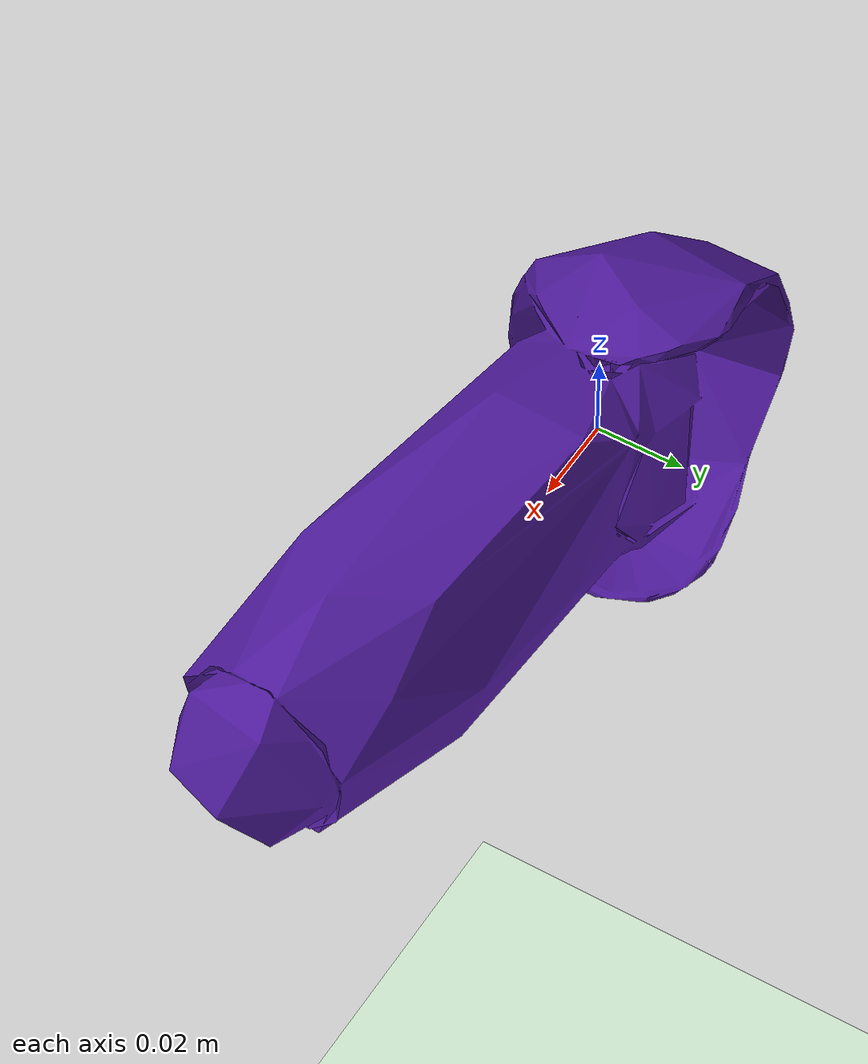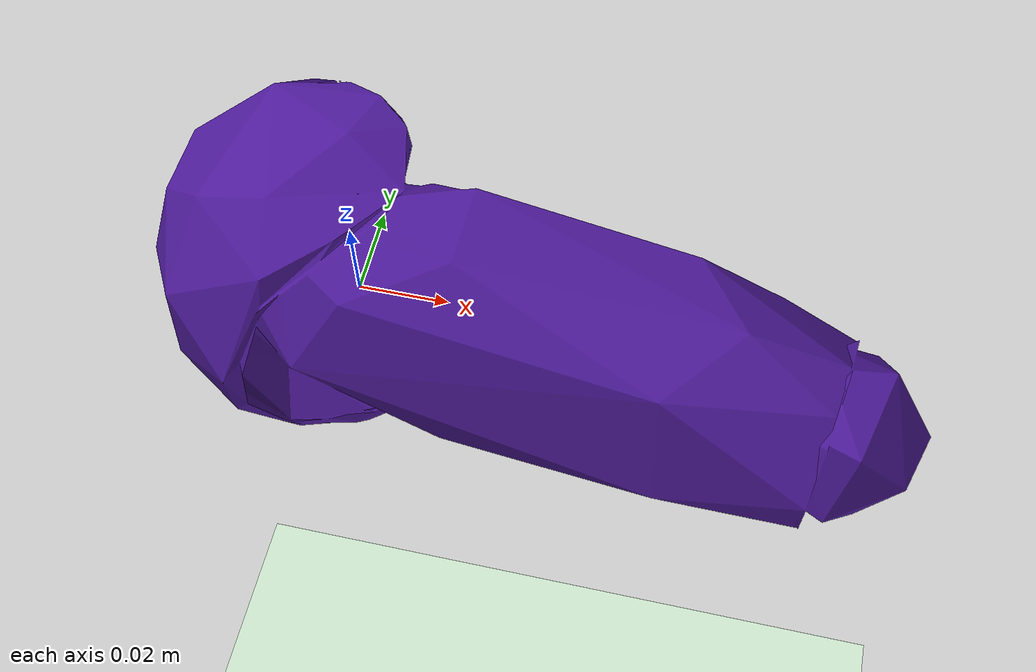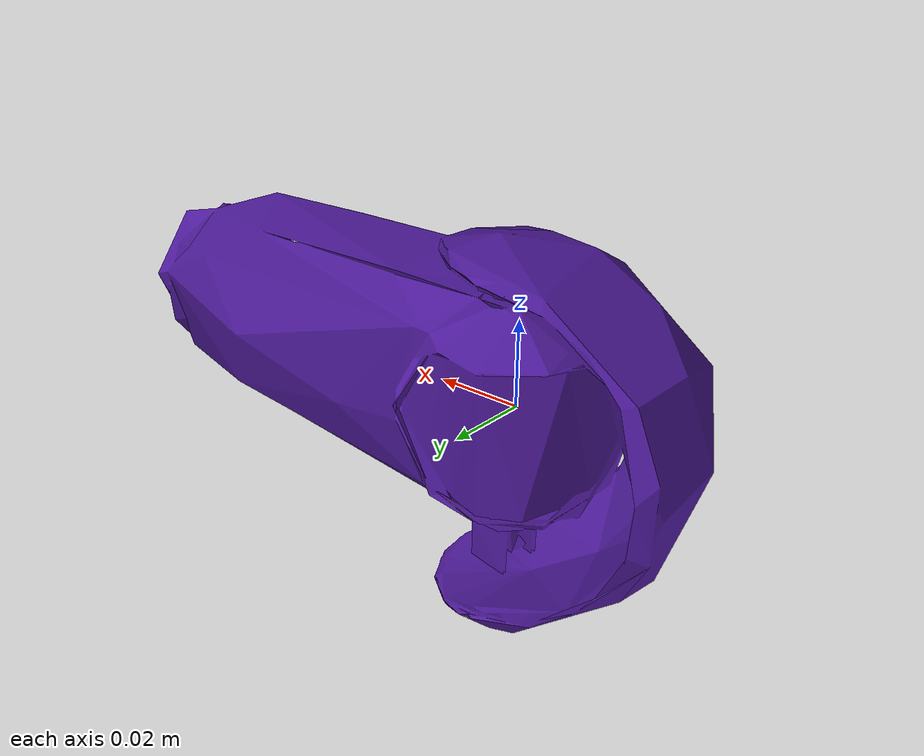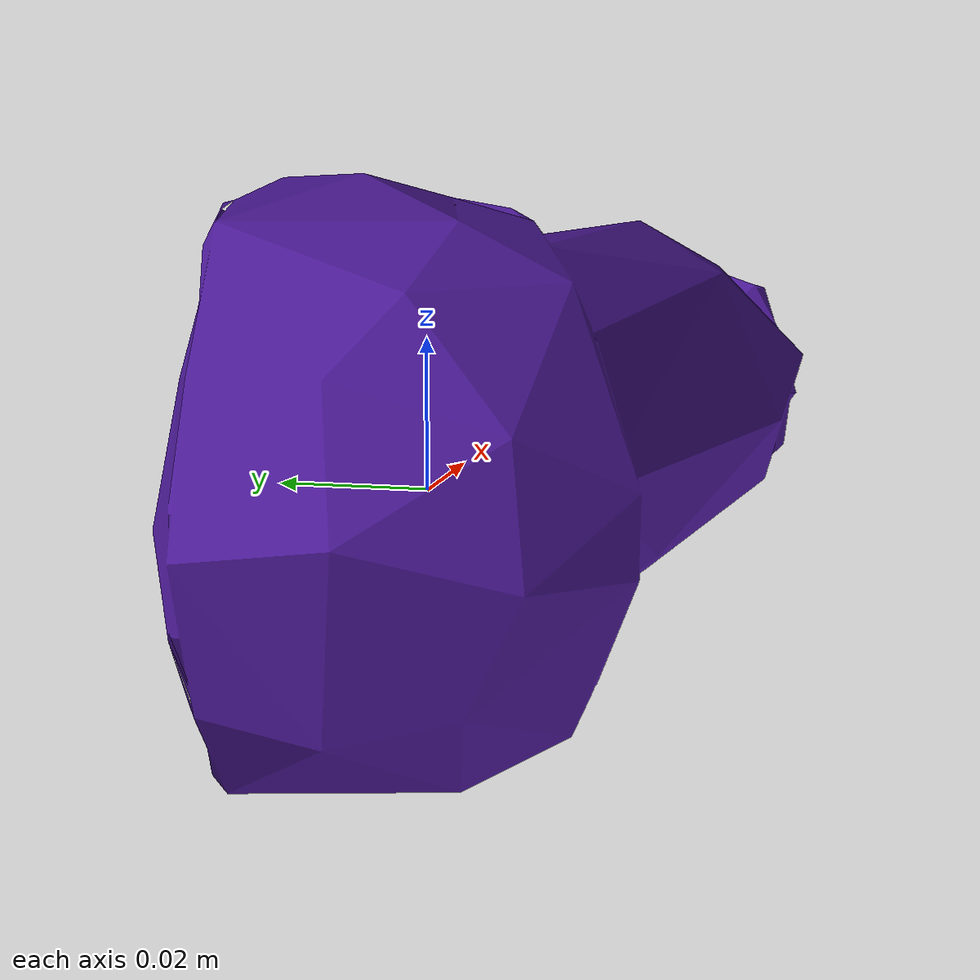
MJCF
<mujoco model="NaoH25V50">
    <compiler angle="radian" meshdir="./nao_meshes/meshes/V40/"/>
    <option integrator="RK4" />

    <default>
        <joint  armature="1" damping="1"/>
    </default>
    <size njmax="500" nconmax="100" />
    <asset>
        <mesh name="RShoulderPitch_0.10" file="RShoulderPitch_0.10.stl" scale="0.1 0.1 0.1" />
        <mesh name="RShoulderRoll_0.10" file="RShoulderRoll_0.10.stl" scale="0.1 0.1 0.1" />
        <mesh name="RElbowRoll_0.10" file="RElbowRoll_0.10.stl" scale="0.1 0.1 0.1" />
        <mesh name="RWristYaw_0.10" file="RWristYaw_0.10.stl" scale="0.1 0.1 0.1" />
        <mesh name="RFinger21_0.10" file="RFinger21_0.10.stl" scale="0.1 0.1 0.1" />
        <mesh name="RFinger22_0.10" file="RFinger22_0.10.stl" scale="0.1 0.1 0.1" />
        <mesh name="RFinger23_0.10" file="RFinger23_0.10.stl" scale="0.1 0.1 0.1" />
        <mesh name="RFinger11_0.10" file="RFinger11_0.10.stl" scale="0.1 0.1 0.1" />
        <mesh name="RFinger12_0.10" file="RFinger12_0.10.stl" scale="0.1 0.1 0.1" />
        <mesh name="RFinger13_0.10" file="RFinger13_0.10.stl" scale="0.1 0.1 0.1" />
        <mesh name="RThumb1_0.10" file="RThumb1_0.10.stl" scale="0.1 0.1 0.1" />
        <mesh name="RThumb2_0.10" file="RThumb2_0.10.stl" scale="0.1 0.1 0.1" />
        <texture builtin="checker" height="100" name="texplane" rgb1="0 0 0" rgb2="0.8 0.8 0.8" type="2d" width="100"/>
        <material name="MatPlane" reflectance="0.5" shininess="1" specular="1" texrepeat="60 60" texture="texplane"/>
    </asset>

    <worldbody>
                <geom contype="1" conaffinity="1" condim="3" friction="1 .1 .1" material="MatPlane" name="floor" pos="0 0 -0.335" rgba="0.8 0.9 0.8 1" size="20 20 0.125" type="plane"/>

                <body name="RBicep" pos="0 0 0">
                    <inertial pos="0.0213201 -0.00466808 0.0004386" quat="0.527557 0.52235 0.47264 0.474811" mass="1.7996" diaginertia="0.00363268 0.00337871 0.000658873" />
                    <joint name="RShoulderRoll" pos="0 0 0" axis="0 1 0"   type="hinge"/>
                    <joint name="RShoulderPitch" pos="0 0 0" axis="0 0 1"     type="hinge"/>
                    <geom contype="2" conaffinity="1" type="mesh" rgba="0.3 0.1 0.6 1" mesh="RShoulderRoll_0.10" />

                </body>

    </worldbody>
    <actuator>

        <motor   joint="RShoulderPitch" />
        <motor   joint="RShoulderRoll" />

    </actuator>
</mujoco>
